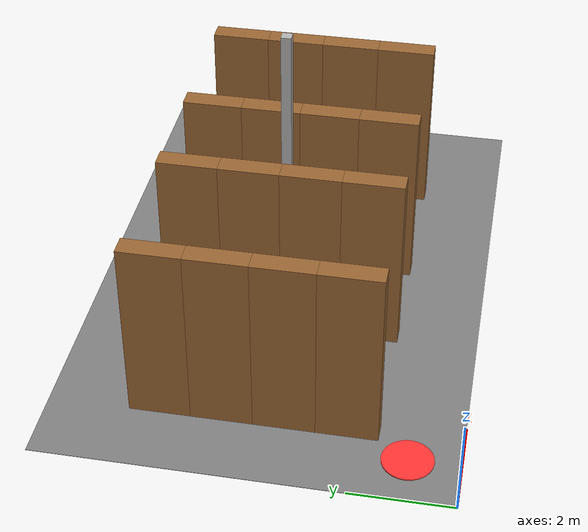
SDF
<?xml version="1.0"?>
<sdf version="1.10">
  <world name="ref-wh-01">
    <physics name="1ms" type="ignored">
      <max_step_size>0.001</max_step_size>
      <real_time_factor>1.0</real_time_factor>
    </physics>
    <plugin filename="gz-sim-physics-system"
            name="gz::sim::systems::Physics"/>
    <plugin filename="gz-sim-user-commands-system"
            name="gz::sim::systems::UserCommands"/>
    <plugin filename="gz-sim-scene-broadcaster-system"
            name="gz::sim::systems::SceneBroadcaster"/>
    <plugin filename="gz-sim-sensors-system"
            name="gz::sim::systems::Sensors">
      <render_engine>ogre2</render_engine>
    </plugin>
    <light type="directional" name="sun">
      <cast_shadows>true</cast_shadows>
      <pose>0 0 10 0 0 0</pose>
      <diffuse>0.8 0.8 0.8 1</diffuse>
      <specular>0.2 0.2 0.2 1</specular>
      <direction>-0.5 0.1 -0.9</direction>
    </light>
    <model name="ground_plane">
      <static>true</static>
      <pose>6.000000 4.000000 0 0 0 0</pose>
      <link name="link">
        <collision name="collision">
          <geometry><box><size>12.000000 8.000000 0.01</size></box></geometry>
          <pose>0 0 -0.005 0 0 0</pose>
        </collision>
        <visual name="visual">
          <geometry><box><size>12.000000 8.000000 0.01</size></box></geometry>
          <pose>0 0 -0.005 0 0 0</pose>
          <material>
            <ambient>0.3 0.3 0.3 1</ambient>
            <diffuse>0.5 0.5 0.5 1</diffuse>
          </material>
        </visual>
      </link>
    </model>
    <model name="takeoff_pad_marker">
      <static>true</static>
      <pose>1.000000 1.000000 0.010000 0 0 0.000000</pose>
      <link name="link">
        <visual name="visual">
          <geometry>
            <cylinder><radius>0.500000</radius><length>0.020000</length></cylinder>
          </geometry>
          <material>
            <ambient>0.8 0.1 0.1 1</ambient>
            <diffuse>1.0 0.2 0.2 1</diffuse>
          </material>
        </visual>
      </link>
    </model>
    <model name="rack_A1-W1">
      <static>true</static>
      <pose>1.600000 2.200000 1.900000 0 0 1.570796</pose>
      <link name="link">
        <collision name="collision">
          <geometry><box><size>1.200000 0.400000 3.800000</size></box></geometry>
        </collision>
        <visual name="visual">
          <geometry><box><size>1.200000 0.400000 3.800000</size></box></geometry>
          <material>
            <ambient>0.4 0.25 0.1 1</ambient>
            <diffuse>0.6 0.4 0.2 1</diffuse>
          </material>
        </visual>
      </link>
    </model>
    <model name="rack_A1-W2">
      <static>true</static>
      <pose>1.600000 3.400000 1.900000 0 0 1.570796</pose>
      <link name="link">
        <collision name="collision">
          <geometry><box><size>1.200000 0.400000 3.800000</size></box></geometry>
        </collision>
        <visual name="visual">
          <geometry><box><size>1.200000 0.400000 3.800000</size></box></geometry>
          <material>
            <ambient>0.4 0.25 0.1 1</ambient>
            <diffuse>0.6 0.4 0.2 1</diffuse>
          </material>
        </visual>
      </link>
    </model>
    <model name="rack_A1-W3">
      <static>true</static>
      <pose>1.600000 4.600000 1.900000 0 0 1.570796</pose>
      <link name="link">
        <collision name="collision">
          <geometry><box><size>1.200000 0.400000 3.800000</size></box></geometry>
        </collision>
        <visual name="visual">
          <geometry><box><size>1.200000 0.400000 3.800000</size></box></geometry>
          <material>
            <ambient>0.4 0.25 0.1 1</ambient>
            <diffuse>0.6 0.4 0.2 1</diffuse>
          </material>
        </visual>
      </link>
    </model>
    <model name="rack_A1-W4">
      <static>true</static>
      <pose>1.600000 5.800000 1.900000 0 0 1.570796</pose>
      <link name="link">
        <collision name="collision">
          <geometry><box><size>1.200000 0.400000 3.800000</size></box></geometry>
        </collision>
        <visual name="visual">
          <geometry><box><size>1.200000 0.400000 3.800000</size></box></geometry>
          <material>
            <ambient>0.4 0.25 0.1 1</ambient>
            <diffuse>0.6 0.4 0.2 1</diffuse>
          </material>
        </visual>
      </link>
    </model>
    <model name="rack_A1-E1">
      <static>true</static>
      <pose>4.400000 2.200000 1.900000 0 0 1.570796</pose>
      <link name="link">
        <collision name="collision">
          <geometry><box><size>1.200000 0.400000 3.800000</size></box></geometry>
        </collision>
        <visual name="visual">
          <geometry><box><size>1.200000 0.400000 3.800000</size></box></geometry>
          <material>
            <ambient>0.4 0.25 0.1 1</ambient>
            <diffuse>0.6 0.4 0.2 1</diffuse>
          </material>
        </visual>
      </link>
    </model>
    <model name="rack_A1-E2">
      <static>true</static>
      <pose>4.400000 3.400000 1.900000 0 0 1.570796</pose>
      <link name="link">
        <collision name="collision">
          <geometry><box><size>1.200000 0.400000 3.800000</size></box></geometry>
        </collision>
        <visual name="visual">
          <geometry><box><size>1.200000 0.400000 3.800000</size></box></geometry>
          <material>
            <ambient>0.4 0.25 0.1 1</ambient>
            <diffuse>0.6 0.4 0.2 1</diffuse>
          </material>
        </visual>
      </link>
    </model>
    <model name="rack_A1-E3">
      <static>true</static>
      <pose>4.400000 4.600000 1.900000 0 0 1.570796</pose>
      <link name="link">
        <collision name="collision">
          <geometry><box><size>1.200000 0.400000 3.800000</size></box></geometry>
        </collision>
        <visual name="visual">
          <geometry><box><size>1.200000 0.400000 3.800000</size></box></geometry>
          <material>
            <ambient>0.4 0.25 0.1 1</ambient>
            <diffuse>0.6 0.4 0.2 1</diffuse>
          </material>
        </visual>
      </link>
    </model>
    <model name="rack_A1-E4">
      <static>true</static>
      <pose>4.400000 5.800000 1.900000 0 0 1.570796</pose>
      <link name="link">
        <collision name="collision">
          <geometry><box><size>1.200000 0.400000 3.800000</size></box></geometry>
        </collision>
        <visual name="visual">
          <geometry><box><size>1.200000 0.400000 3.800000</size></box></geometry>
          <material>
            <ambient>0.4 0.25 0.1 1</ambient>
            <diffuse>0.6 0.4 0.2 1</diffuse>
          </material>
        </visual>
      </link>
    </model>
    <model name="rack_A2-W1">
      <static>true</static>
      <pose>6.600000 2.200000 1.900000 0 0 1.570796</pose>
      <link name="link">
        <collision name="collision">
          <geometry><box><size>1.200000 0.400000 3.800000</size></box></geometry>
        </collision>
        <visual name="visual">
          <geometry><box><size>1.200000 0.400000 3.800000</size></box></geometry>
          <material>
            <ambient>0.4 0.25 0.1 1</ambient>
            <diffuse>0.6 0.4 0.2 1</diffuse>
          </material>
        </visual>
      </link>
    </model>
    <model name="rack_A2-W2">
      <static>true</static>
      <pose>6.600000 3.400000 1.900000 0 0 1.570796</pose>
      <link name="link">
        <collision name="collision">
          <geometry><box><size>1.200000 0.400000 3.800000</size></box></geometry>
        </collision>
        <visual name="visual">
          <geometry><box><size>1.200000 0.400000 3.800000</size></box></geometry>
          <material>
            <ambient>0.4 0.25 0.1 1</ambient>
            <diffuse>0.6 0.4 0.2 1</diffuse>
          </material>
        </visual>
      </link>
    </model>
    <model name="rack_A2-W3">
      <static>true</static>
      <pose>6.600000 4.600000 1.900000 0 0 1.570796</pose>
      <link name="link">
        <collision name="collision">
          <geometry><box><size>1.200000 0.400000 3.800000</size></box></geometry>
        </collision>
        <visual name="visual">
          <geometry><box><size>1.200000 0.400000 3.800000</size></box></geometry>
          <material>
            <ambient>0.4 0.25 0.1 1</ambient>
            <diffuse>0.6 0.4 0.2 1</diffuse>
          </material>
        </visual>
      </link>
    </model>
    <model name="rack_A2-W4">
      <static>true</static>
      <pose>6.600000 5.800000 1.900000 0 0 1.570796</pose>
      <link name="link">
        <collision name="collision">
          <geometry><box><size>1.200000 0.400000 3.800000</size></box></geometry>
        </collision>
        <visual name="visual">
          <geometry><box><size>1.200000 0.400000 3.800000</size></box></geometry>
          <material>
            <ambient>0.4 0.25 0.1 1</ambient>
            <diffuse>0.6 0.4 0.2 1</diffuse>
          </material>
        </visual>
      </link>
    </model>
    <model name="rack_A2-E1">
      <static>true</static>
      <pose>9.400000 2.200000 1.900000 0 0 1.570796</pose>
      <link name="link">
        <collision name="collision">
          <geometry><box><size>1.200000 0.400000 3.800000</size></box></geometry>
        </collision>
        <visual name="visual">
          <geometry><box><size>1.200000 0.400000 3.800000</size></box></geometry>
          <material>
            <ambient>0.4 0.25 0.1 1</ambient>
            <diffuse>0.6 0.4 0.2 1</diffuse>
          </material>
        </visual>
      </link>
    </model>
    <model name="rack_A2-E2">
      <static>true</static>
      <pose>9.400000 3.400000 1.900000 0 0 1.570796</pose>
      <link name="link">
        <collision name="collision">
          <geometry><box><size>1.200000 0.400000 3.800000</size></box></geometry>
        </collision>
        <visual name="visual">
          <geometry><box><size>1.200000 0.400000 3.800000</size></box></geometry>
          <material>
            <ambient>0.4 0.25 0.1 1</ambient>
            <diffuse>0.6 0.4 0.2 1</diffuse>
          </material>
        </visual>
      </link>
    </model>
    <model name="rack_A2-E3">
      <static>true</static>
      <pose>9.400000 4.600000 1.900000 0 0 1.570796</pose>
      <link name="link">
        <collision name="collision">
          <geometry><box><size>1.200000 0.400000 3.800000</size></box></geometry>
        </collision>
        <visual name="visual">
          <geometry><box><size>1.200000 0.400000 3.800000</size></box></geometry>
          <material>
            <ambient>0.4 0.25 0.1 1</ambient>
            <diffuse>0.6 0.4 0.2 1</diffuse>
          </material>
        </visual>
      </link>
    </model>
    <model name="rack_A2-E4">
      <static>true</static>
      <pose>9.400000 5.800000 1.900000 0 0 1.570796</pose>
      <link name="link">
        <collision name="collision">
          <geometry><box><size>1.200000 0.400000 3.800000</size></box></geometry>
        </collision>
        <visual name="visual">
          <geometry><box><size>1.200000 0.400000 3.800000</size></box></geometry>
          <material>
            <ambient>0.4 0.25 0.1 1</ambient>
            <diffuse>0.6 0.4 0.2 1</diffuse>
          </material>
        </visual>
      </link>
    </model>
    <model name="no_go_support_column_between_aisles">
      <static>true</static>
      <pose>5.600000 4.100000 3.000000 0 0 0</pose>
      <link name="link">
        <collision name="collision">
          <geometry><box><size>0.200000 0.200000 6.000000</size></box></geometry>
        </collision>
        <visual name="visual">
          <geometry><box><size>0.200000 0.200000 6.000000</size></box></geometry>
          <material>
            <ambient>0.5 0.5 0.5 1</ambient>
            <diffuse>0.7 0.7 0.7 1</diffuse>
          </material>
        </visual>
      </link>
    </model>
  </world>
</sdf>
